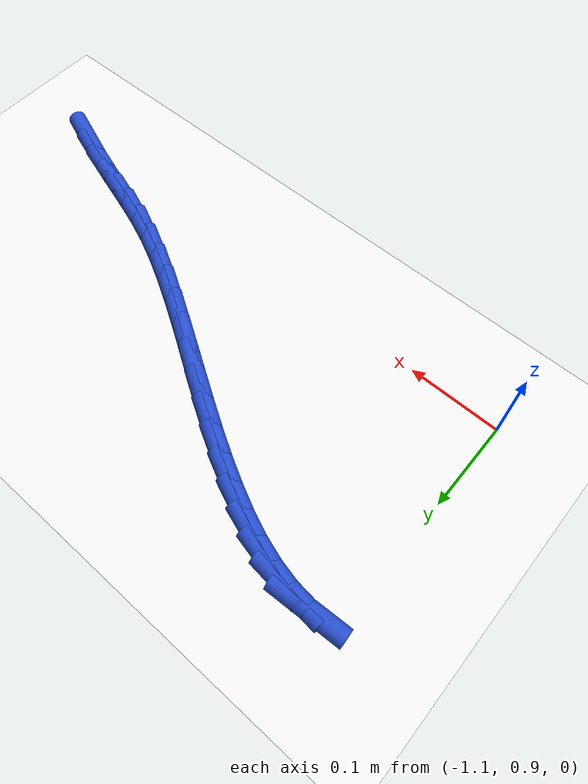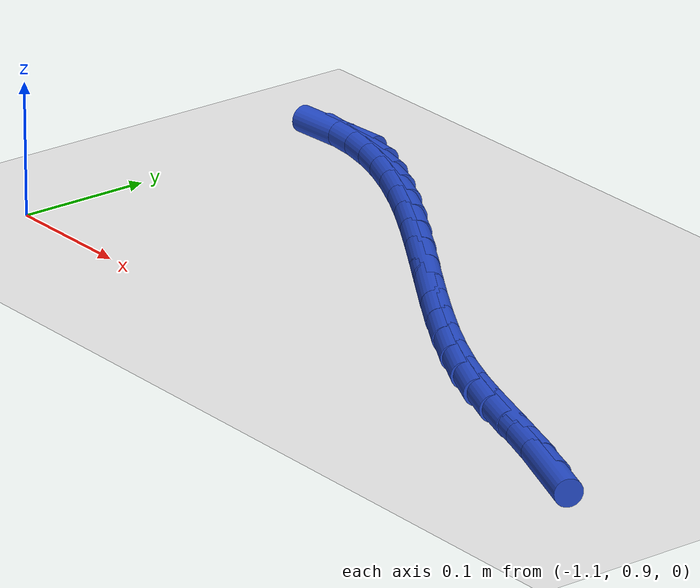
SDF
<sdf version="1.6">
 <world name="default">
  <model name="ground_plane">
   <static>1</static>
   <link name="link">
    <collision name="collision">
     <geometry><plane><normal>0 0 1</normal><size>100 100</size></plane></geometry>
     <surface><friction><ode><mu>100</mu><mu2>50</mu2></ode></friction></surface>
    </collision>
    <visual name="visual">
     <cast_shadows>0</cast_shadows>
     <geometry><plane><normal>0 0 1</normal><size>100 100</size></plane></geometry>
     <material>
      <script><uri>file://media/materials/scripts/gazebo.material</uri><name>Gazebo/WhiteGlow</name></script>
     </material>
    </visual>
   </link>
  </model>
  <model name="line">
   <link name="link_40">
    <pose>-0.5279236598948476 0.9037411060814424 0.01 0 1.57 -0.37263344083006067</pose>
    <collision name="collision">
     <geometry><cylinder><radius>0.01</radius><length>0.08</length></cylinder></geometry>
    </collision>
    <visual name="visual">
     <material>
      <script><name>Gazebo/Blue</name><uri>file://media/materials/scripts/gazebo.material</uri></script>
     </material>
     <geometry><cylinder><radius>0.01</radius><length>0.08</length></cylinder></geometry>
    </visual>
   </link>
   <link name="link_41">
    <pose>-0.5549602344165292 0.9143095915708516 0.01 0 1.57 -0.33766719422047237</pose>
    <collision name="collision">
     <geometry><cylinder><radius>0.01</radius><length>0.08</length></cylinder></geometry>
    </collision>
    <visual name="visual">
     <material>
      <script><name>Gazebo/Blue</name><uri>file://media/materials/scripts/gazebo.material</uri></script>
     </material>
     <geometry><cylinder><radius>0.01</radius><length>0.08</length></cylinder></geometry>
    </visual>
   </link>
   <link name="link_42">
    <pose>-0.5820123960564667 0.9238079931302692 0.01 0 1.57 -0.3158640826543507</pose>
    <collision name="collision">
     <geometry><cylinder><radius>0.01</radius><length>0.08</length></cylinder></geometry>
    </collision>
    <visual name="visual">
     <material>
      <script><name>Gazebo/Blue</name><uri>file://media/materials/scripts/gazebo.material</uri></script>
     </material>
     <geometry><cylinder><radius>0.01</radius><length>0.08</length></cylinder></geometry>
    </visual>
   </link>
   <link name="link_43">
    <pose>-0.6085230810983535 0.9324718319329308 0.01 0 1.57 -0.3138710922903581</pose>
    <collision name="collision">
     <geometry><cylinder><radius>0.01</radius><length>0.08</length></cylinder></geometry>
    </collision>
    <visual name="visual">
     <material>
      <script><name>Gazebo/Blue</name><uri>file://media/materials/scripts/gazebo.material</uri></script>
     </material>
     <geometry><cylinder><radius>0.01</radius><length>0.08</length></cylinder></geometry>
    </visual>
   </link>
   <link name="link_44">
    <pose>-0.6344341278122992 0.9408825869691143 0.01 0 1.57 -0.33800140475630647</pose>
    <collision name="collision">
     <geometry><cylinder><radius>0.01</radius><length>0.08</length></cylinder></geometry>
    </collision>
    <visual name="visual">
     <material>
      <script><name>Gazebo/Blue</name><uri>file://media/materials/scripts/gazebo.material</uri></script>
     </material>
     <geometry><cylinder><radius>0.01</radius><length>0.08</length></cylinder></geometry>
    </visual>
   </link>
   <link name="link_45">
    <pose>-0.6600883351554628 0.9498997787839286 0.01 0 1.57 -0.38675559189832476</pose>
    <collision name="collision">
     <geometry><cylinder><radius>0.01</radius><length>0.08</length></cylinder></geometry>
    </collision>
    <visual name="visual">
     <material>
      <script><name>Gazebo/Blue</name><uri>file://media/materials/scripts/gazebo.material</uri></script>
     </material>
     <geometry><cylinder><radius>0.01</radius><length>0.08</length></cylinder></geometry>
    </visual>
   </link>
   <link name="link_46">
    <pose>-0.6858385150947921 0.9603869863259074 0.01 0 1.57 -0.4447675113696836</pose>
    <collision name="collision">
     <geometry><cylinder><radius>0.01</radius><length>0.08</length></cylinder></geometry>
    </collision>
    <visual name="visual">
     <material>
      <script><name>Gazebo/Blue</name><uri>file://media/materials/scripts/gazebo.material</uri></script>
     </material>
     <geometry><cylinder><radius>0.01</radius><length>0.08</length></cylinder></geometry>
    </visual>
   </link>
   <link name="link_47">
    <pose>-0.7118978447260422 0.9728073274264223 0.01 0 1.57 -0.4908819002500221</pose>
    <collision name="collision">
     <geometry><cylinder><radius>0.01</radius><length>0.08</length></cylinder></geometry>
    </collision>
    <visual name="visual">
     <material>
      <script><name>Gazebo/Blue</name><uri>file://media/materials/scripts/gazebo.material</uri></script>
     </material>
     <geometry><cylinder><radius>0.01</radius><length>0.08</length></cylinder></geometry>
    </visual>
   </link>
   <link name="link_48">
    <pose>-0.7382188825498427 0.9868764876109711 0.01 0 1.57 -0.5249608125229787</pose>
    <collision name="collision">
     <geometry><cylinder><radius>0.01</radius><length>0.08</length></cylinder></geometry>
    </collision>
    <visual name="visual">
     <material>
      <script><name>Gazebo/Blue</name><uri>file://media/materials/scripts/gazebo.material</uri></script>
     </material>
     <geometry><cylinder><radius>0.01</radius><length>0.08</length></cylinder></geometry>
    </visual>
   </link>
   <link name="link_49">
    <pose>-0.7647256683309209 1.0022283630587194 0.01 0 1.57 -0.5486260765015953</pose>
    <collision name="collision">
     <geometry><cylinder><radius>0.01</radius><length>0.08</length></cylinder></geometry>
    </collision>
    <visual name="visual">
     <material>
      <script><name>Gazebo/Blue</name><uri>file://media/materials/scripts/gazebo.material</uri></script>
     </material>
     <geometry><cylinder><radius>0.01</radius><length>0.08</length></cylinder></geometry>
    </visual>
   </link>
   <link name="link_50">
    <pose>-0.7913422418340027 1.018496849948832 0.01 0 1.57 -0.5629718374270076</pose>
    <collision name="collision">
     <geometry><cylinder><radius>0.01</radius><length>0.08</length></cylinder></geometry>
    </collision>
    <visual name="visual">
     <material>
      <script><name>Gazebo/Blue</name><uri>file://media/materials/scripts/gazebo.material</uri></script>
     </material>
     <geometry><cylinder><radius>0.01</radius><length>0.08</length></cylinder></geometry>
    </visual>
   </link>
   <link name="link_51">
    <pose>-0.8179926428238149 1.0353158444604746 0.01 0 1.57 -0.5686225255396786</pose>
    <collision name="collision">
     <geometry><cylinder><radius>0.01</radius><length>0.08</length></cylinder></geometry>
    </collision>
    <visual name="visual">
     <material>
      <script><name>Gazebo/Blue</name><uri>file://media/materials/scripts/gazebo.material</uri></script>
     </material>
     <geometry><cylinder><radius>0.01</radius><length>0.08</length></cylinder></geometry>
    </visual>
   </link>
   <link name="link_52">
    <pose>-0.8446009110650834 1.0523192427728119 0.01 0 1.57 -0.5657697860172443</pose>
    <collision name="collision">
     <geometry><cylinder><radius>0.01</radius><length>0.08</length></cylinder></geometry>
    </collision>
    <visual name="visual">
     <material>
      <script><name>Gazebo/Blue</name><uri>file://media/materials/scripts/gazebo.material</uri></script>
     </material>
     <geometry><cylinder><radius>0.01</radius><length>0.08</length></cylinder></geometry>
    </visual>
   </link>
   <link name="link_53">
    <pose>-0.871091086322535 1.069140941065009 0.01 0 1.57 -0.5541794447651126</pose>
    <collision name="collision">
     <geometry><cylinder><radius>0.01</radius><length>0.08</length></cylinder></geometry>
    </collision>
    <visual name="visual">
     <material>
      <script><name>Gazebo/Blue</name><uri>file://media/materials/scripts/gazebo.material</uri></script>
     </material>
     <geometry><cylinder><radius>0.01</radius><length>0.08</length></cylinder></geometry>
    </visual>
   </link>
   <link name="link_54">
    <pose>-0.8973872083608959 1.0854148355162314 0.01 0 1.57 -0.5331647149262077</pose>
    <collision name="collision">
     <geometry><cylinder><radius>0.01</radius><length>0.08</length></cylinder></geometry>
    </collision>
    <visual name="visual">
     <material>
      <script><name>Gazebo/Blue</name><uri>file://media/materials/scripts/gazebo.material</uri></script>
     </material>
     <geometry><cylinder><radius>0.01</radius><length>0.08</length></cylinder></geometry>
    </visual>
   </link>
   <link name="link_55">
    <pose>-0.9234133169448928 1.1007748223056442 0.01 0 1.57 -0.501523838635975</pose>
    <collision name="collision">
     <geometry><cylinder><radius>0.01</radius><length>0.08</length></cylinder></geometry>
    </collision>
    <visual name="visual">
     <material>
      <script><name>Gazebo/Blue</name><uri>file://media/materials/scripts/gazebo.material</uri></script>
     </material>
     <geometry><cylinder><radius>0.01</radius><length>0.08</length></cylinder></geometry>
    </visual>
   </link>
   <link name="link_56">
    <pose>-0.9490934518392516 1.1148547976124121 0.01 0 1.57 -0.45744468080448314</pose>
    <collision name="collision">
     <geometry><cylinder><radius>0.01</radius><length>0.08</length></cylinder></geometry>
    </collision>
    <visual name="visual">
     <material>
      <script><name>Gazebo/Blue</name><uri>file://media/materials/scripts/gazebo.material</uri></script>
     </material>
     <geometry><cylinder><radius>0.01</radius><length>0.08</length></cylinder></geometry>
    </visual>
   </link>
   <link name="link_57">
    <pose>-0.9743516528086994 1.127288657615701 0.01 0 1.57 -0.3983937433669224</pose>
    <collision name="collision">
     <geometry><cylinder><radius>0.01</radius><length>0.08</length></cylinder></geometry>
    </collision>
    <visual name="visual">
     <material>
      <script><name>Gazebo/Blue</name><uri>file://media/materials/scripts/gazebo.material</uri></script>
     </material>
     <geometry><cylinder><radius>0.01</radius><length>0.08</length></cylinder></geometry>
    </visual>
   </link>
   <link name="link_58">
    <pose>-0.9991119596179621 1.1377102984946754 0.01 0 1.57 -0.32104960243753217</pose>
    <collision name="collision">
     <geometry><cylinder><radius>0.01</radius><length>0.08</length></cylinder></geometry>
    </collision>
    <visual name="visual">
     <material>
      <script><name>Gazebo/Blue</name><uri>file://media/materials/scripts/gazebo.material</uri></script>
     </material>
     <geometry><cylinder><radius>0.01</radius><length>0.08</length></cylinder></geometry>
    </visual>
   </link>
   <link name="link_59">
    <pose>-1.023298412031766 1.1457536164285012 0.01 0 1.57 -0.22144172937321024</pose>
    <collision name="collision">
     <geometry><cylinder><radius>0.01</radius><length>0.08</length></cylinder></geometry>
    </collision>
    <visual name="visual">
     <material>
      <script><name>Gazebo/Blue</name><uri>file://media/materials/scripts/gazebo.material</uri></script>
     </material>
     <geometry><cylinder><radius>0.01</radius><length>0.08</length></cylinder></geometry>
    </visual>
   </link>
   <link name="link_60">
    <pose>-1.0468350498148382 1.1510525075963425 0.01 0 1.57 -0.09564232067876792</pose>
    <collision name="collision">
     <geometry><cylinder><radius>0.01</radius><length>0.08</length></cylinder></geometry>
    </collision>
    <visual name="visual">
     <material>
      <script><name>Gazebo/Blue</name><uri>file://media/materials/scripts/gazebo.material</uri></script>
     </material>
     <geometry><cylinder><radius>0.01</radius><length>0.08</length></cylinder></geometry>
    </visual>
   </link>
   <link name="link_61">
    <pose>-1.0696459127319042 1.1532408681773654 0.01 0 1.57 0.05846690367612177</pose>
    <collision name="collision">
     <geometry><cylinder><radius>0.01</radius><length>0.08</length></cylinder></geometry>
    </collision>
    <visual name="visual">
     <material>
      <script><name>Gazebo/Blue</name><uri>file://media/materials/scripts/gazebo.material</uri></script>
     </material>
     <geometry><cylinder><radius>0.01</radius><length>0.08</length></cylinder></geometry>
    </visual>
   </link>
  </model>
 </world>
</sdf>
